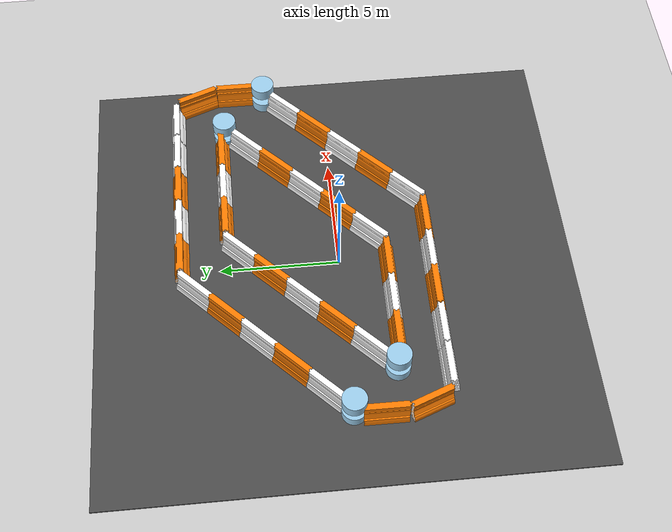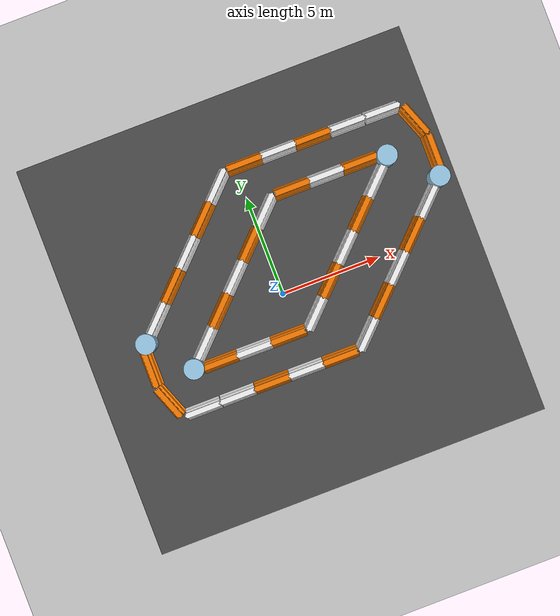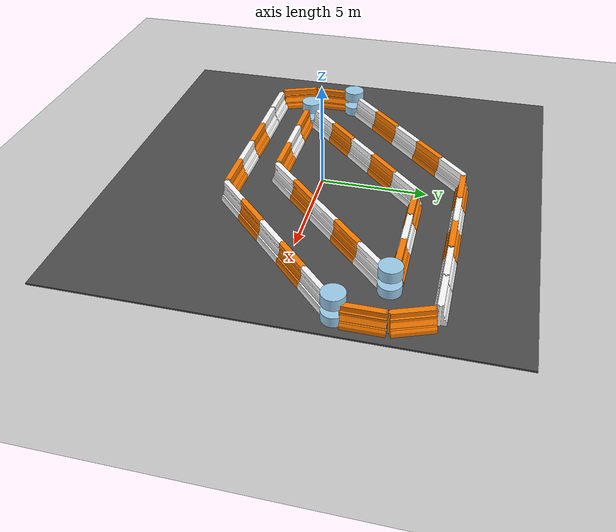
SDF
<sdf version="1.6">
 <world name="default">
  <light name="sun" type="directional">
   <pose>0 0 10 0 -0 0</pose>
   <diffuse>0.8 0.8 0.8 1</diffuse>
   <specular>0.1 0.1 0.1 1</specular>
   <attenuation>
    <range>1000</range>
    <constant>0.9</constant>
    <linear>0.01</linear>
    <quadratic>0.001</quadratic>
   </attenuation>
   <direction>-0.5 0.5 -1</direction>
  </light>
  <model name="ground_plane">
   <static>1</static>
   <link name="link">
    <collision name="collision">
     <geometry><plane><normal>0 0 1</normal><size>100 100</size></plane></geometry>
     <surface><friction><ode><mu>100</mu><mu2>50</mu2></ode></friction></surface>
    </collision>
    <visual name="visual">
     <cast_shadows>0</cast_shadows>
     <geometry><plane><normal>0 0 1</normal><size>100 100</size></plane></geometry>
     <material>
      <script><uri>file://media/materials/scripts/gazebo.material</uri><name>Gazebo/Grey</name></script>
     </material>
    </visual>
   </link>
  </model>
  <gravity>0 0 -9.8</gravity>
  <magnetic_field>6e-06 2.3e-05 -4.2e-05</magnetic_field>
  <atmosphere type="adiabatic"/>
  <physics name="default_physics" default="0" type="ode">
   <max_step_size>0.001</max_step_size>
   <real_time_factor>1</real_time_factor>
   <real_time_update_rate>1000</real_time_update_rate>
  </physics>
  <scene><ambient>0.4 0.4 0.4 1</ambient><background>0.7 0.7 0.7 1</background><shadows>1</shadows></scene>
  <spherical_coordinates>
   <surface_model>EARTH_WGS84</surface_model>
   <latitude_deg>0</latitude_deg>
   <longitude_deg>0</longitude_deg>
   <elevation>0</elevation>
   <heading_deg>0</heading_deg>
  </spherical_coordinates>
  <model name="Track">
   <model name="asphalt_plane">
    <static>1</static>
    <link name="link">
     <collision name="collision"><geometry><box><size>20 20 0.1</size></box></geometry></collision>
     <visual name="visual">
      <cast_shadows>0</cast_shadows>
      <geometry><box><size>20 20 0.1</size></box></geometry>
      <material>
       <script>
        <uri>model://asphalt_plane/materials/scripts</uri>
        <uri>model://asphalt_plane/materials/textures</uri>
        <name>vrc/asphalt</name>
       </script>
      </material>
     </visual>
    </link>
    <pose>-0.055686 0.206361 0 0 -0 0</pose>
   </model>
   <model name="drc_practice_angled_barrier_135">
    <static>1</static>
    <static>1</static>
    <link name="one::link">
     <visual name="visual">
      <geometry>
       <mesh><uri>model://drc_practice_orange_jersey_barrier/meshes/jersey_barrier.dae</uri></mesh>
      </geometry>
     </visual>
     <collision name="collision">
      <geometry>
       <mesh><uri>model://drc_practice_orange_jersey_barrier/meshes/jersey_barrier.dae</uri></mesh>
      </geometry>
     </collision>
     <pose>0 0 0 0 0 -1.5707</pose>
    </link>
    <static>1</static>
    <link name="two::link">
     <visual name="visual">
      <geometry>
       <mesh><uri>model://drc_practice_white_jersey_barrier/meshes/jersey_barrier.dae</uri></mesh>
      </geometry>
     </visual>
     <collision name="collision">
      <geometry>
       <mesh><uri>model://drc_practice_white_jersey_barrier/meshes/jersey_barrier.dae</uri></mesh>
      </geometry>
     </collision>
     <pose>1.7646 -0.008563 0 0 0 -1.5707</pose>
    </link>
    <static>1</static>
    <link name="three::link">
     <visual name="visual">
      <geometry>
       <mesh><uri>model://drc_practice_orange_jersey_barrier/meshes/jersey_barrier.dae</uri></mesh>
      </geometry>
     </visual>
     <collision name="collision">
      <geometry>
       <mesh><uri>model://drc_practice_orange_jersey_barrier/meshes/jersey_barrier.dae</uri></mesh>
      </geometry>
     </collision>
     <pose>3.52922 -0.016171 0 0 0 -1.5707</pose>
    </link>
    <static>1</static>
    <link name="four::link">
     <visual name="visual">
      <geometry>
       <mesh><uri>model://drc_practice_white_jersey_barrier/meshes/jersey_barrier.dae</uri></mesh>
      </geometry>
     </visual>
     <collision name="collision">
      <geometry>
       <mesh><uri>model://drc_practice_white_jersey_barrier/meshes/jersey_barrier.dae</uri></mesh>
      </geometry>
     </collision>
     <pose>5.13431 0.54837 0 0 0 -0.785398</pose>
    </link>
    <static>1</static>
    <link name="five::link">
     <visual name="visual">
      <geometry>
       <mesh><uri>model://drc_practice_orange_jersey_barrier/meshes/jersey_barrier.dae</uri></mesh>
      </geometry>
     </visual>
     <collision name="collision">
      <geometry>
       <mesh><uri>model://drc_practice_orange_jersey_barrier/meshes/jersey_barrier.dae</uri></mesh>
      </geometry>
     </collision>
     <pose>6.3884 1.79074 0 0 0 -0.785398</pose>
    </link>
    <static>1</static>
    <link name="six::link">
     <visual name="visual">
      <geometry>
       <mesh><uri>model://drc_practice_white_jersey_barrier/meshes/jersey_barrier.dae</uri></mesh>
      </geometry>
     </visual>
     <collision name="collision">
      <geometry>
       <mesh><uri>model://drc_practice_white_jersey_barrier/meshes/jersey_barrier.dae</uri></mesh>
      </geometry>
     </collision>
     <pose>7.6423 3.03258 0 0 0 -0.785398</pose>
    </link>
    <static>1</static>
    <link name="seven::link">
     <visual name="visual">
      <geometry>
       <mesh><uri>model://drc_practice_orange_jersey_barrier/meshes/jersey_barrier.dae</uri></mesh>
      </geometry>
     </visual>
     <collision name="collision">
      <geometry>
       <mesh><uri>model://drc_practice_orange_jersey_barrier/meshes/jersey_barrier.dae</uri></mesh>
      </geometry>
     </collision>
     <pose>8.89611 4.27529 0 0 0 -0.785398</pose>
    </link>
    <static>1</static>
    <link name="eight::link">
     <visual name="visual">
      <geometry>
       <mesh><uri>model://drc_practice_white_jersey_barrier/meshes/jersey_barrier.dae</uri></mesh>
      </geometry>
     </visual>
     <collision name="collision">
      <geometry>
       <mesh><uri>model://drc_practice_white_jersey_barrier/meshes/jersey_barrier.dae</uri></mesh>
      </geometry>
     </collision>
     <pose>10.1496 5.51614 0 0 0 -0.785398</pose>
    </link>
    <static>1</static>
    <link name="nine::link">
     <visual name="visual">
      <geometry><mesh><uri>model://drc_practice_blue_cylinder/meshes/cylinder.dae</uri></mesh></geometry>
     </visual>
     <collision name="collision">
      <geometry><mesh><uri>model://drc_practice_blue_cylinder/meshes/cylinder.dae</uri></mesh></geometry>
     </collision>
     <pose>11.0288 6.44203 0 0 -0 0</pose>
    </link>
    <static>1</static>
    <link name="ten::link">
     <visual name="visual">
      <geometry><mesh><uri>model://drc_practice_blue_cylinder/meshes/cylinder.dae</uri></mesh></geometry>
     </visual>
     <collision name="collision">
      <geometry><mesh><uri>model://drc_practice_blue_cylinder/meshes/cylinder.dae</uri></mesh></geometry>
     </collision>
     <pose>11.0288 6.44203 0.866 0 -0 0</pose>
    </link>
    <pose>-2.00017 -3.82142 0 0 -0 0</pose>
   </model>
   <model name="drc_practice_angled_barrier_135_0">
    <static>1</static>
    <static>1</static>
    <link name="one::link">
     <visual name="visual">
      <geometry>
       <mesh><uri>model://drc_practice_orange_jersey_barrier/meshes/jersey_barrier.dae</uri></mesh>
      </geometry>
     </visual>
     <collision name="collision">
      <geometry>
       <mesh><uri>model://drc_practice_orange_jersey_barrier/meshes/jersey_barrier.dae</uri></mesh>
      </geometry>
     </collision>
     <pose>0 0 0 0 0 -1.5707</pose>
    </link>
    <static>1</static>
    <link name="two::link">
     <visual name="visual">
      <geometry>
       <mesh><uri>model://drc_practice_white_jersey_barrier/meshes/jersey_barrier.dae</uri></mesh>
      </geometry>
     </visual>
     <collision name="collision">
      <geometry>
       <mesh><uri>model://drc_practice_white_jersey_barrier/meshes/jersey_barrier.dae</uri></mesh>
      </geometry>
     </collision>
     <pose>1.7646 -0.008563 0 0 0 -1.5707</pose>
    </link>
    <static>1</static>
    <link name="three::link">
     <visual name="visual">
      <geometry>
       <mesh><uri>model://drc_practice_orange_jersey_barrier/meshes/jersey_barrier.dae</uri></mesh>
      </geometry>
     </visual>
     <collision name="collision">
      <geometry>
       <mesh><uri>model://drc_practice_orange_jersey_barrier/meshes/jersey_barrier.dae</uri></mesh>
      </geometry>
     </collision>
     <pose>3.52922 -0.016171 0 0 0 -1.5707</pose>
    </link>
    <static>1</static>
    <link name="four::link">
     <visual name="visual">
      <geometry>
       <mesh><uri>model://drc_practice_white_jersey_barrier/meshes/jersey_barrier.dae</uri></mesh>
      </geometry>
     </visual>
     <collision name="collision">
      <geometry>
       <mesh><uri>model://drc_practice_white_jersey_barrier/meshes/jersey_barrier.dae</uri></mesh>
      </geometry>
     </collision>
     <pose>5.13431 0.54837 0 0 0 -0.785398</pose>
    </link>
    <static>1</static>
    <link name="five::link">
     <visual name="visual">
      <geometry>
       <mesh><uri>model://drc_practice_orange_jersey_barrier/meshes/jersey_barrier.dae</uri></mesh>
      </geometry>
     </visual>
     <collision name="collision">
      <geometry>
       <mesh><uri>model://drc_practice_orange_jersey_barrier/meshes/jersey_barrier.dae</uri></mesh>
      </geometry>
     </collision>
     <pose>6.3884 1.79074 0 0 0 -0.785398</pose>
    </link>
    <static>1</static>
    <link name="six::link">
     <visual name="visual">
      <geometry>
       <mesh><uri>model://drc_practice_white_jersey_barrier/meshes/jersey_barrier.dae</uri></mesh>
      </geometry>
     </visual>
     <collision name="collision">
      <geometry>
       <mesh><uri>model://drc_practice_white_jersey_barrier/meshes/jersey_barrier.dae</uri></mesh>
      </geometry>
     </collision>
     <pose>7.6423 3.03258 0 0 0 -0.785398</pose>
    </link>
    <static>1</static>
    <link name="seven::link">
     <visual name="visual">
      <geometry>
       <mesh><uri>model://drc_practice_orange_jersey_barrier/meshes/jersey_barrier.dae</uri></mesh>
      </geometry>
     </visual>
     <collision name="collision">
      <geometry>
       <mesh><uri>model://drc_practice_orange_jersey_barrier/meshes/jersey_barrier.dae</uri></mesh>
      </geometry>
     </collision>
     <pose>8.89611 4.27529 0 0 0 -0.785398</pose>
    </link>
    <static>1</static>
    <link name="eight::link">
     <visual name="visual">
      <geometry>
       <mesh><uri>model://drc_practice_white_jersey_barrier/meshes/jersey_barrier.dae</uri></mesh>
      </geometry>
     </visual>
     <collision name="collision">
      <geometry>
       <mesh><uri>model://drc_practice_white_jersey_barrier/meshes/jersey_barrier.dae</uri></mesh>
      </geometry>
     </collision>
     <pose>10.1496 5.51614 0 0 0 -0.785398</pose>
    </link>
    <static>1</static>
    <link name="nine::link">
     <visual name="visual">
      <geometry><mesh><uri>model://drc_practice_blue_cylinder/meshes/cylinder.dae</uri></mesh></geometry>
     </visual>
     <collision name="collision">
      <geometry><mesh><uri>model://drc_practice_blue_cylinder/meshes/cylinder.dae</uri></mesh></geometry>
     </collision>
     <pose>11.0288 6.44203 0 0 -0 0</pose>
    </link>
    <static>1</static>
    <link name="ten::link">
     <visual name="visual">
      <geometry><mesh><uri>model://drc_practice_blue_cylinder/meshes/cylinder.dae</uri></mesh></geometry>
     </visual>
     <collision name="collision">
      <geometry><mesh><uri>model://drc_practice_blue_cylinder/meshes/cylinder.dae</uri></mesh></geometry>
     </collision>
     <pose>11.0288 6.44203 0.866 0 -0 0</pose>
    </link>
    <pose>-4 -2 0 0 -0 0</pose>
   </model>
   <model name="drc_practice_angled_barrier_135_1">
    <static>1</static>
    <static>1</static>
    <link name="one::link">
     <visual name="visual">
      <geometry>
       <mesh><uri>model://drc_practice_orange_jersey_barrier/meshes/jersey_barrier.dae</uri></mesh>
      </geometry>
     </visual>
     <collision name="collision">
      <geometry>
       <mesh><uri>model://drc_practice_orange_jersey_barrier/meshes/jersey_barrier.dae</uri></mesh>
      </geometry>
     </collision>
     <pose>0 0 0 0 0 -1.5707</pose>
    </link>
    <static>1</static>
    <link name="two::link">
     <visual name="visual">
      <geometry>
       <mesh><uri>model://drc_practice_white_jersey_barrier/meshes/jersey_barrier.dae</uri></mesh>
      </geometry>
     </visual>
     <collision name="collision">
      <geometry>
       <mesh><uri>model://drc_practice_white_jersey_barrier/meshes/jersey_barrier.dae</uri></mesh>
      </geometry>
     </collision>
     <pose>1.7646 -0.008563 0 0 0 -1.5707</pose>
    </link>
    <static>1</static>
    <link name="three::link">
     <visual name="visual">
      <geometry>
       <mesh><uri>model://drc_practice_orange_jersey_barrier/meshes/jersey_barrier.dae</uri></mesh>
      </geometry>
     </visual>
     <collision name="collision">
      <geometry>
       <mesh><uri>model://drc_practice_orange_jersey_barrier/meshes/jersey_barrier.dae</uri></mesh>
      </geometry>
     </collision>
     <pose>3.52922 -0.016171 0 0 0 -1.5707</pose>
    </link>
    <static>1</static>
    <link name="four::link">
     <visual name="visual">
      <geometry>
       <mesh><uri>model://drc_practice_white_jersey_barrier/meshes/jersey_barrier.dae</uri></mesh>
      </geometry>
     </visual>
     <collision name="collision">
      <geometry>
       <mesh><uri>model://drc_practice_white_jersey_barrier/meshes/jersey_barrier.dae</uri></mesh>
      </geometry>
     </collision>
     <pose>5.13431 0.54837 0 0 0 -0.785398</pose>
    </link>
    <static>1</static>
    <link name="five::link">
     <visual name="visual">
      <geometry>
       <mesh><uri>model://drc_practice_orange_jersey_barrier/meshes/jersey_barrier.dae</uri></mesh>
      </geometry>
     </visual>
     <collision name="collision">
      <geometry>
       <mesh><uri>model://drc_practice_orange_jersey_barrier/meshes/jersey_barrier.dae</uri></mesh>
      </geometry>
     </collision>
     <pose>6.3884 1.79074 0 0 0 -0.785398</pose>
    </link>
    <static>1</static>
    <link name="six::link">
     <visual name="visual">
      <geometry>
       <mesh><uri>model://drc_practice_white_jersey_barrier/meshes/jersey_barrier.dae</uri></mesh>
      </geometry>
     </visual>
     <collision name="collision">
      <geometry>
       <mesh><uri>model://drc_practice_white_jersey_barrier/meshes/jersey_barrier.dae</uri></mesh>
      </geometry>
     </collision>
     <pose>7.6423 3.03258 0 0 0 -0.785398</pose>
    </link>
    <static>1</static>
    <link name="seven::link">
     <visual name="visual">
      <geometry>
       <mesh><uri>model://drc_practice_orange_jersey_barrier/meshes/jersey_barrier.dae</uri></mesh>
      </geometry>
     </visual>
     <collision name="collision">
      <geometry>
       <mesh><uri>model://drc_practice_orange_jersey_barrier/meshes/jersey_barrier.dae</uri></mesh>
      </geometry>
     </collision>
     <pose>8.89611 4.27529 0 0 0 -0.785398</pose>
    </link>
    <static>1</static>
    <link name="eight::link">
     <visual name="visual">
      <geometry>
       <mesh><uri>model://drc_practice_white_jersey_barrier/meshes/jersey_barrier.dae</uri></mesh>
      </geometry>
     </visual>
     <collision name="collision">
      <geometry>
       <mesh><uri>model://drc_practice_white_jersey_barrier/meshes/jersey_barrier.dae</uri></mesh>
      </geometry>
     </collision>
     <pose>10.1496 5.51614 0 0 0 -0.785398</pose>
    </link>
    <static>1</static>
    <link name="nine::link">
     <visual name="visual">
      <geometry><mesh><uri>model://drc_practice_blue_cylinder/meshes/cylinder.dae</uri></mesh></geometry>
     </visual>
     <collision name="collision">
      <geometry><mesh><uri>model://drc_practice_blue_cylinder/meshes/cylinder.dae</uri></mesh></geometry>
     </collision>
     <pose>11.0288 6.44203 0 0 -0 0</pose>
    </link>
    <static>1</static>
    <link name="ten::link">
     <visual name="visual">
      <geometry><mesh><uri>model://drc_practice_blue_cylinder/meshes/cylinder.dae</uri></mesh></geometry>
     </visual>
     <collision name="collision">
      <geometry><mesh><uri>model://drc_practice_blue_cylinder/meshes/cylinder.dae</uri></mesh></geometry>
     </collision>
     <pose>11.0288 6.44203 0.866 0 -0 0</pose>
    </link>
    <pose>5.73652 4.62845 0 0 -0 -3.13825</pose>
   </model>
   <model name="drc_practice_angled_barrier_135_1_clone">
    <static>1</static>
    <static>1</static>
    <link name="one::link">
     <visual name="visual">
      <geometry>
       <mesh><uri>model://drc_practice_orange_jersey_barrier/meshes/jersey_barrier.dae</uri></mesh>
      </geometry>
     </visual>
     <collision name="collision">
      <geometry>
       <mesh><uri>model://drc_practice_orange_jersey_barrier/meshes/jersey_barrier.dae</uri></mesh>
      </geometry>
     </collision>
     <pose>0 0 0 0 0 -1.5707</pose>
    </link>
    <static>1</static>
    <link name="two::link">
     <visual name="visual">
      <geometry>
       <mesh><uri>model://drc_practice_white_jersey_barrier/meshes/jersey_barrier.dae</uri></mesh>
      </geometry>
     </visual>
     <collision name="collision">
      <geometry>
       <mesh><uri>model://drc_practice_white_jersey_barrier/meshes/jersey_barrier.dae</uri></mesh>
      </geometry>
     </collision>
     <pose>1.7646 -0.008563 0 0 0 -1.5707</pose>
    </link>
    <static>1</static>
    <link name="three::link">
     <visual name="visual">
      <geometry>
       <mesh><uri>model://drc_practice_orange_jersey_barrier/meshes/jersey_barrier.dae</uri></mesh>
      </geometry>
     </visual>
     <collision name="collision">
      <geometry>
       <mesh><uri>model://drc_practice_orange_jersey_barrier/meshes/jersey_barrier.dae</uri></mesh>
      </geometry>
     </collision>
     <pose>3.52922 -0.016171 0 0 0 -1.5707</pose>
    </link>
    <static>1</static>
    <link name="four::link">
     <visual name="visual">
      <geometry>
       <mesh><uri>model://drc_practice_white_jersey_barrier/meshes/jersey_barrier.dae</uri></mesh>
      </geometry>
     </visual>
     <collision name="collision">
      <geometry>
       <mesh><uri>model://drc_practice_white_jersey_barrier/meshes/jersey_barrier.dae</uri></mesh>
      </geometry>
     </collision>
     <pose>5.13431 0.54837 0 0 0 -0.785398</pose>
    </link>
    <static>1</static>
    <link name="five::link">
     <visual name="visual">
      <geometry>
       <mesh><uri>model://drc_practice_orange_jersey_barrier/meshes/jersey_barrier.dae</uri></mesh>
      </geometry>
     </visual>
     <collision name="collision">
      <geometry>
       <mesh><uri>model://drc_practice_orange_jersey_barrier/meshes/jersey_barrier.dae</uri></mesh>
      </geometry>
     </collision>
     <pose>6.3884 1.79074 0 0 0 -0.785398</pose>
    </link>
    <static>1</static>
    <link name="six::link">
     <visual name="visual">
      <geometry>
       <mesh><uri>model://drc_practice_white_jersey_barrier/meshes/jersey_barrier.dae</uri></mesh>
      </geometry>
     </visual>
     <collision name="collision">
      <geometry>
       <mesh><uri>model://drc_practice_white_jersey_barrier/meshes/jersey_barrier.dae</uri></mesh>
      </geometry>
     </collision>
     <pose>7.6423 3.03258 0 0 0 -0.785398</pose>
    </link>
    <static>1</static>
    <link name="seven::link">
     <visual name="visual">
      <geometry>
       <mesh><uri>model://drc_practice_orange_jersey_barrier/meshes/jersey_barrier.dae</uri></mesh>
      </geometry>
     </visual>
     <collision name="collision">
      <geometry>
       <mesh><uri>model://drc_practice_orange_jersey_barrier/meshes/jersey_barrier.dae</uri></mesh>
      </geometry>
     </collision>
     <pose>8.89611 4.27529 0 0 0 -0.785398</pose>
    </link>
    <static>1</static>
    <link name="eight::link">
     <visual name="visual">
      <geometry>
       <mesh><uri>model://drc_practice_white_jersey_barrier/meshes/jersey_barrier.dae</uri></mesh>
      </geometry>
     </visual>
     <collision name="collision">
      <geometry>
       <mesh><uri>model://drc_practice_white_jersey_barrier/meshes/jersey_barrier.dae</uri></mesh>
      </geometry>
     </collision>
     <pose>10.1496 5.51614 0 0 0 -0.785398</pose>
    </link>
    <static>1</static>
    <link name="nine::link">
     <visual name="visual">
      <geometry><mesh><uri>model://drc_practice_blue_cylinder/meshes/cylinder.dae</uri></mesh></geometry>
     </visual>
     <collision name="collision">
      <geometry><mesh><uri>model://drc_practice_blue_cylinder/meshes/cylinder.dae</uri></mesh></geometry>
     </collision>
     <pose>11.0288 6.44203 0 0 -0 0</pose>
    </link>
    <static>1</static>
    <link name="ten::link">
     <visual name="visual">
      <geometry><mesh><uri>model://drc_practice_blue_cylinder/meshes/cylinder.dae</uri></mesh></geometry>
     </visual>
     <collision name="collision">
      <geometry><mesh><uri>model://drc_practice_blue_cylinder/meshes/cylinder.dae</uri></mesh></geometry>
     </collision>
     <pose>11.0288 6.44203 0.866 0 -0 0</pose>
    </link>
    <pose>4 6.56196 0 0 0 -3.13825</pose>
   </model>
   <model name="drc_practice_organge_jersey_barrier">
    <static>1</static>
    <link name="link">
     <visual name="visual">
      <geometry>
       <mesh><uri>model://drc_practice_orange_jersey_barrier/meshes/jersey_barrier.dae</uri></mesh>
      </geometry>
     </visual>
     <collision name="collision">
      <geometry>
       <mesh><uri>model://drc_practice_orange_jersey_barrier/meshes/jersey_barrier.dae</uri></mesh>
      </geometry>
     </collision>
    </link>
    <pose>9.26988 3.82804 0 0 -0 0</pose>
   </model>
   <model name="drc_practice_organge_jersey_barrier_clone">
    <static>1</static>
    <link name="link">
     <visual name="visual">
      <geometry>
       <mesh><uri>model://drc_practice_orange_jersey_barrier/meshes/jersey_barrier.dae</uri></mesh>
      </geometry>
     </visual>
     <collision name="collision">
      <geometry>
       <mesh><uri>model://drc_practice_orange_jersey_barrier/meshes/jersey_barrier.dae</uri></mesh>
      </geometry>
     </collision>
    </link>
    <pose>8.95323 5.61653 0 0 -0 0.371423</pose>
   </model>
   <model name="drc_practice_organge_jersey_barrier_clone_0">
    <static>1</static>
    <link name="link">
     <visual name="visual">
      <geometry>
       <mesh><uri>model://drc_practice_orange_jersey_barrier/meshes/jersey_barrier.dae</uri></mesh>
      </geometry>
     </visual>
     <collision name="collision">
      <geometry>
       <mesh><uri>model://drc_practice_orange_jersey_barrier/meshes/jersey_barrier.dae</uri></mesh>
      </geometry>
     </collision>
    </link>
    <pose>-7.26918 -1.12859 0 0 -0 0</pose>
   </model>
   <model name="drc_practice_organge_jersey_barrier_clone_clone">
    <static>1</static>
    <link name="link">
     <visual name="visual">
      <geometry>
       <mesh><uri>model://drc_practice_orange_jersey_barrier/meshes/jersey_barrier.dae</uri></mesh>
      </geometry>
     </visual>
     <collision name="collision">
      <geometry>
       <mesh><uri>model://drc_practice_orange_jersey_barrier/meshes/jersey_barrier.dae</uri></mesh>
      </geometry>
     </collision>
    </link>
    <pose>-7.00871 -2.927 0 0 -0 0.371423</pose>
   </model>
   <model name="drc_practice_white_jersey_barrier">
    <static>1</static>
    <link name="link">
     <visual name="visual">
      <geometry>
       <mesh><uri>model://drc_practice_white_jersey_barrier/meshes/jersey_barrier.dae</uri></mesh>
      </geometry>
     </visual>
     <collision name="collision">
      <geometry>
       <mesh><uri>model://drc_practice_white_jersey_barrier/meshes/jersey_barrier.dae</uri></mesh>
      </geometry>
     </collision>
    </link>
    <pose>5.79861 6.5599 0 0 -0 1.56821</pose>
   </model>
   <model name="drc_practice_white_jersey_barrier_clone">
    <static>1</static>
    <link name="link">
     <visual name="visual">
      <geometry>
       <mesh><uri>model://drc_practice_white_jersey_barrier/meshes/jersey_barrier.dae</uri></mesh>
      </geometry>
     </visual>
     <collision name="collision">
      <geometry>
       <mesh><uri>model://drc_practice_white_jersey_barrier/meshes/jersey_barrier.dae</uri></mesh>
      </geometry>
     </collision>
    </link>
    <pose>7.59249 6.55568 0 0 -0 1.56821</pose>
   </model>
   <model name="drc_practice_white_jersey_barrier_clone_clone">
    <static>1</static>
    <link name="link">
     <visual name="visual">
      <geometry>
       <mesh><uri>model://drc_practice_white_jersey_barrier/meshes/jersey_barrier.dae</uri></mesh>
      </geometry>
     </visual>
     <collision name="collision">
      <geometry>
       <mesh><uri>model://drc_practice_white_jersey_barrier/meshes/jersey_barrier.dae</uri></mesh>
      </geometry>
     </collision>
    </link>
    <pose>-3.78377 -3.82691 0 0 0 -1.56614</pose>
   </model>
   <model name="drc_practice_white_jersey_barrier_clone_clone_clone">
    <static>1</static>
    <link name="link">
     <visual name="visual">
      <geometry>
       <mesh><uri>model://drc_practice_white_jersey_barrier/meshes/jersey_barrier.dae</uri></mesh>
      </geometry>
     </visual>
     <collision name="collision">
      <geometry>
       <mesh><uri>model://drc_practice_white_jersey_barrier/meshes/jersey_barrier.dae</uri></mesh>
      </geometry>
     </collision>
    </link>
    <pose>-5.57402 -3.83605 0 0 0 -1.56614</pose>
   </model>
   <static>1</static>
   <pose>1e-06 -1e-06 0 0 -0 0</pose>
  </model>
 </world>
</sdf>
